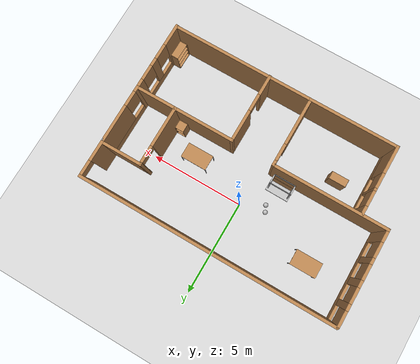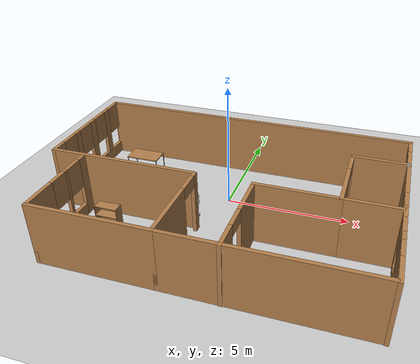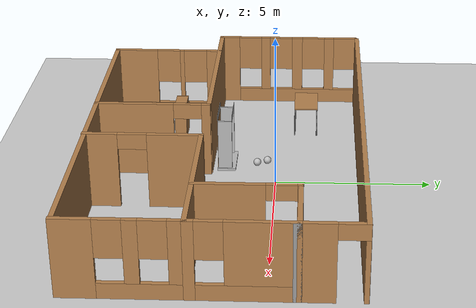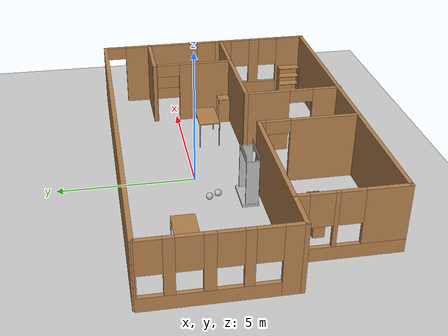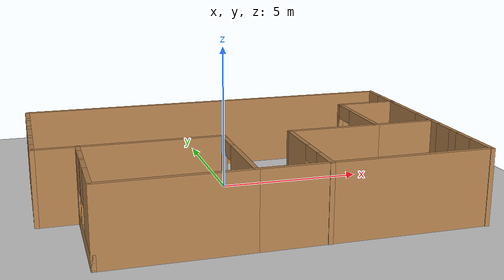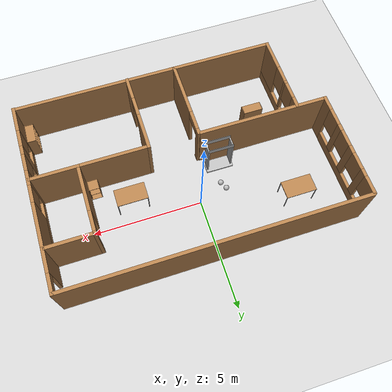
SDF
<sdf version="1.6">
 <world name="default">
  <light name="sun" type="directional">
   <pose>0 0 10 0 -0 0</pose>
   <diffuse>0.8 0.8 0.8 1</diffuse>
   <specular>0.1 0.1 0.1 1</specular>
   <attenuation>
    <range>1000</range>
    <constant>0.9</constant>
    <linear>0.01</linear>
    <quadratic>0.001</quadratic>
   </attenuation>
   <direction>-0.5 0.5 -1</direction>
  </light>
  <model name="ground_plane">
   <static>1</static>
   <link name="link">
    <collision name="collision">
     <geometry><plane><normal>0 0 1</normal><size>100 100</size></plane></geometry>
     <surface><friction><ode><mu>100</mu><mu2>50</mu2></ode></friction></surface>
    </collision>
    <visual name="visual">
     <cast_shadows>0</cast_shadows>
     <geometry><plane><normal>0 0 1</normal><size>100 100</size></plane></geometry>
     <material>
      <script><uri>file://media/materials/scripts/gazebo.material</uri><name>Gazebo/Grey</name></script>
     </material>
    </visual>
   </link>
  </model>
  <gravity>0 0 -9.8</gravity>
  <magnetic_field>6e-06 2.3e-05 -4.2e-05</magnetic_field>
  <atmosphere type="adiabatic"/>
  <physics name="default_physics" default="0" type="ode">
   <max_step_size>0.001</max_step_size>
   <real_time_factor>1</real_time_factor>
   <real_time_update_rate>1000</real_time_update_rate>
  </physics>
  <scene><ambient>0.4 0.4 0.4 1</ambient><background>0.7 0.7 0.7 1</background><shadows>1</shadows></scene>
  <spherical_coordinates>
   <surface_model>EARTH_WGS84</surface_model>
   <latitude_deg>0</latitude_deg>
   <longitude_deg>0</longitude_deg>
   <elevation>0</elevation>
   <heading_deg>0</heading_deg>
  </spherical_coordinates>
  <model name="home">
   <pose>0.169071 -1.53733 0 0 -0 0</pose>
   <link name="Wall_11">
    <collision name="Wall_11_Collision">
     <geometry><box><size>2.25 0.15 2.5</size></box></geometry>
     <pose>0 0 1.25 0 -0 0</pose>
    </collision>
    <visual name="Wall_11_Visual">
     <pose>0 0 1.25 0 -0 0</pose>
     <geometry><box><size>2.25 0.15 2.5</size></box></geometry>
     <material>
      <script><uri>file://media/materials/scripts/gazebo.material</uri><name>Gazebo/Wood</name></script>
      <ambient>1 1 1 1</ambient>
     </material>
    </visual>
    <pose>5.65066 2.425 0 0 -0 3.14159</pose>
   </link>
   <link name="Wall_12">
    <pose>4.60066 0.875 0 0 0 -1.5708</pose>
    <visual name="Wall_12_Visual_0">
     <pose>-1.53737 0 1.25 0 -0 0</pose>
     <geometry><box><size>0.175268 0.15 2.5</size></box></geometry>
     <material>
      <script><uri>file://media/materials/scripts/gazebo.material</uri><name>Gazebo/Wood</name></script>
      <ambient>1 1 1 1</ambient>
     </material>
    </visual>
    <collision name="Wall_12_Collision_0">
     <geometry><box><size>0.175268 0.15 2.5</size></box></geometry>
     <pose>-1.53737 0 1.25 0 -0 0</pose>
    </collision>
    <visual name="Wall_12_Visual_1">
     <pose>0.537634 0 1.25 0 -0 0</pose>
     <geometry><box><size>2.17473 0.15 2.5</size></box></geometry>
     <material>
      <script><uri>file://media/materials/scripts/gazebo.material</uri><name>Gazebo/Wood</name></script>
      <ambient>1 1 1 1</ambient>
     </material>
    </visual>
    <collision name="Wall_12_Collision_1">
     <geometry><box><size>2.17473 0.15 2.5</size></box></geometry>
     <pose>0.537634 0 1.25 0 -0 0</pose>
    </collision>
    <visual name="Wall_12_Visual_2">
     <pose>-0.999732 0 2.25 0 -0 0</pose>
     <geometry><box><size>0.9 0.15 0.5</size></box></geometry>
     <material>
      <script><uri>file://media/materials/scripts/gazebo.material</uri><name>Gazebo/Wood</name></script>
      <ambient>1 1 1 1</ambient>
     </material>
    </visual>
    <collision name="Wall_12_Collision_2">
     <geometry><box><size>0.9 0.15 0.5</size></box></geometry>
     <pose>-0.999732 0 2.25 0 -0 0</pose>
    </collision>
   </link>
   <link name="Wall_13">
    <collision name="Wall_13_Collision">
     <geometry><box><size>2.25 0.15 2.5</size></box></geometry>
     <pose>0 0 1.25 0 -0 0</pose>
    </collision>
    <visual name="Wall_13_Visual">
     <pose>0 0 1.25 0 -0 0</pose>
     <geometry><box><size>2.25 0.15 2.5</size></box></geometry>
     <material>
      <script><uri>file://media/materials/scripts/gazebo.material</uri><name>Gazebo/Wood</name></script>
      <ambient>1 1 1 1</ambient>
     </material>
    </visual>
    <pose>5.65066 -0.675 0 0 -0 0</pose>
   </link>
   <link name="Wall_14">
    <pose>6.70066 0.875 0 0 -0 1.5708</pose>
    <visual name="Wall_14_Visual_0">
     <pose>-1.46129 0 1.25 0 -0 0</pose>
     <geometry><box><size>0.327416 0.15 2.5</size></box></geometry>
     <material>
      <script><uri>file://media/materials/scripts/gazebo.material</uri><name>Gazebo/Wood</name></script>
      <ambient>1 1 1 1</ambient>
     </material>
    </visual>
    <collision name="Wall_14_Collision_0">
     <geometry><box><size>0.327416 0.15 2.5</size></box></geometry>
     <pose>-1.46129 0 1.25 0 -0 0</pose>
    </collision>
    <visual name="Wall_14_Visual_1">
     <pose>0.163708 0 0.25 0 -0 0</pose>
     <geometry><box><size>2.92258 0.15 0.5</size></box></geometry>
     <material>
      <script><uri>file://media/materials/scripts/gazebo.material</uri><name>Gazebo/Wood</name></script>
      <ambient>1 1 1 1</ambient>
     </material>
    </visual>
    <collision name="Wall_14_Collision_1">
     <geometry><box><size>2.92258 0.15 0.5</size></box></geometry>
     <pose>0.163708 0 0.25 0 -0 0</pose>
    </collision>
    <visual name="Wall_14_Visual_2">
     <pose>0.563708 0 1.5 0 -0 0</pose>
     <geometry><box><size>2.12258 0.15 2</size></box></geometry>
     <material>
      <script><uri>file://media/materials/scripts/gazebo.material</uri><name>Gazebo/Wood</name></script>
      <ambient>1 1 1 1</ambient>
     </material>
    </visual>
    <collision name="Wall_14_Collision_2">
     <geometry><box><size>2.12258 0.15 2</size></box></geometry>
     <pose>0.563708 0 1.5 0 -0 0</pose>
    </collision>
    <visual name="Wall_14_Visual_3">
     <pose>-0.897584 0 1.9 0 -0 0</pose>
     <geometry><box><size>0.8 0.15 1.2</size></box></geometry>
     <material>
      <script><uri>file://media/materials/scripts/gazebo.material</uri><name>Gazebo/Wood</name></script>
      <ambient>1 1 1 1</ambient>
     </material>
    </visual>
    <collision name="Wall_14_Collision_3">
     <geometry><box><size>0.8 0.15 1.2</size></box></geometry>
     <pose>-0.897584 0 1.9 0 -0 0</pose>
    </collision>
   </link>
   <link name="Wall_16">
    <collision name="Wall_16_Collision">
     <geometry><box><size>3.25 0.15 2.5</size></box></geometry>
     <pose>0 0 1.25 0 -0 0</pose>
    </collision>
    <visual name="Wall_16_Visual">
     <pose>0 0 1.25 0 -0 0</pose>
     <geometry><box><size>3.25 0.15 2.5</size></box></geometry>
     <material>
      <script><uri>file://media/materials/scripts/gazebo.material</uri><name>Gazebo/Wood</name></script>
      <ambient>1 1 1 1</ambient>
     </material>
    </visual>
    <pose>3.05066 -0.675 0 0 -0 3.14159</pose>
   </link>
   <link name="Wall_17">
    <pose>1.50066 -2.475 0 0 0 -1.5708</pose>
    <visual name="Wall_17_Visual_0">
     <pose>-1.00164 0 1.25 0 -0 0</pose>
     <geometry><box><size>1.74673 0.15 2.5</size></box></geometry>
     <material>
      <script><uri>file://media/materials/scripts/gazebo.material</uri><name>Gazebo/Wood</name></script>
      <ambient>1 1 1 1</ambient>
     </material>
    </visual>
    <collision name="Wall_17_Collision_0">
     <geometry><box><size>1.74673 0.15 2.5</size></box></geometry>
     <pose>-1.00164 0 1.25 0 -0 0</pose>
    </collision>
    <visual name="Wall_17_Visual_1">
     <pose>1.32336 0 1.25 0 -0 0</pose>
     <geometry><box><size>1.10327 0.15 2.5</size></box></geometry>
     <material>
      <script><uri>file://media/materials/scripts/gazebo.material</uri><name>Gazebo/Wood</name></script>
      <ambient>1 1 1 1</ambient>
     </material>
    </visual>
    <collision name="Wall_17_Collision_1">
     <geometry><box><size>1.10327 0.15 2.5</size></box></geometry>
     <pose>1.32336 0 1.25 0 -0 0</pose>
    </collision>
    <visual name="Wall_17_Visual_2">
     <pose>0.321727 0 2.25 0 -0 0</pose>
     <geometry><box><size>0.9 0.15 0.5</size></box></geometry>
     <material>
      <script><uri>file://media/materials/scripts/gazebo.material</uri><name>Gazebo/Wood</name></script>
      <ambient>1 1 1 1</ambient>
     </material>
    </visual>
    <collision name="Wall_17_Collision_2">
     <geometry><box><size>0.9 0.15 0.5</size></box></geometry>
     <pose>0.321727 0 2.25 0 -0 0</pose>
    </collision>
   </link>
   <link name="Wall_20">
    <collision name="Wall_20_Collision">
     <geometry><box><size>6 0.15 2.5</size></box></geometry>
     <pose>0 0 1.25 0 -0 0</pose>
    </collision>
    <visual name="Wall_20_Visual">
     <pose>0 0 1.25 0 -0 0</pose>
     <geometry><box><size>6 0.15 2.5</size></box></geometry>
     <material>
      <script><uri>file://media/materials/scripts/gazebo.material</uri><name>Gazebo/Wood</name></script>
      <ambient>1 1 1 1</ambient>
     </material>
    </visual>
    <pose>-3.77566 -0.625687 0 0 -0 3.14159</pose>
   </link>
   <link name="Wall_21">
    <pose>-6.70066 1.79931 0 0 -0 1.5708</pose>
    <visual name="Wall_21_Visual_0">
     <pose>-2.1438 0 1.25 0 -0 0</pose>
     <geometry><box><size>0.712408 0.15 2.5</size></box></geometry>
     <material>
      <script><uri>file://media/materials/scripts/gazebo.material</uri><name>Gazebo/Wood</name></script>
      <ambient>1 1 1 1</ambient>
     </material>
    </visual>
    <collision name="Wall_21_Collision_0">
     <geometry><box><size>0.712408 0.15 2.5</size></box></geometry>
     <pose>-2.1438 0 1.25 0 -0 0</pose>
    </collision>
    <visual name="Wall_21_Visual_1">
     <pose>0.356204 0 0.25 0 -0 0</pose>
     <geometry><box><size>4.28759 0.15 0.5</size></box></geometry>
     <material>
      <script><uri>file://media/materials/scripts/gazebo.material</uri><name>Gazebo/Wood</name></script>
      <ambient>1 1 1 1</ambient>
     </material>
    </visual>
    <collision name="Wall_21_Collision_1">
     <geometry><box><size>4.28759 0.15 0.5</size></box></geometry>
     <pose>0.356204 0 0.25 0 -0 0</pose>
    </collision>
    <visual name="Wall_21_Visual_2">
     <pose>-0.828988 0 1.5 0 -0 0</pose>
     <geometry><box><size>0.317208 0.15 2</size></box></geometry>
     <material>
      <script><uri>file://media/materials/scripts/gazebo.material</uri><name>Gazebo/Wood</name></script>
      <ambient>1 1 1 1</ambient>
     </material>
    </visual>
    <collision name="Wall_21_Collision_2">
     <geometry><box><size>0.317208 0.15 2</size></box></geometry>
     <pose>-0.828988 0 1.5 0 -0 0</pose>
    </collision>
    <visual name="Wall_21_Visual_3">
     <pose>0.314821 0 1.5 0 -0 0</pose>
     <geometry><box><size>0.370409 0.15 2</size></box></geometry>
     <material>
      <script><uri>file://media/materials/scripts/gazebo.material</uri><name>Gazebo/Wood</name></script>
      <ambient>1 1 1 1</ambient>
     </material>
    </visual>
    <collision name="Wall_21_Collision_3">
     <geometry><box><size>0.370409 0.15 2</size></box></geometry>
     <pose>0.314821 0 1.5 0 -0 0</pose>
    </collision>
    <visual name="Wall_21_Visual_4">
     <pose>1.47193 0 1.5 0 -0 0</pose>
     <geometry><box><size>0.343809 0.15 2</size></box></geometry>
     <material>
      <script><uri>file://media/materials/scripts/gazebo.material</uri><name>Gazebo/Wood</name></script>
      <ambient>1 1 1 1</ambient>
     </material>
    </visual>
    <collision name="Wall_21_Collision_4">
     <geometry><box><size>0.343809 0.15 2</size></box></geometry>
     <pose>1.47193 0 1.5 0 -0 0</pose>
    </collision>
    <visual name="Wall_21_Visual_5">
     <pose>2.47192 0 1.5 0 -0 0</pose>
     <geometry><box><size>0.056167 0.15 2</size></box></geometry>
     <material>
      <script><uri>file://media/materials/scripts/gazebo.material</uri><name>Gazebo/Wood</name></script>
      <ambient>1 1 1 1</ambient>
     </material>
    </visual>
    <collision name="Wall_21_Collision_5">
     <geometry><box><size>0.056167 0.15 2</size></box></geometry>
     <pose>2.47192 0 1.5 0 -0 0</pose>
    </collision>
    <visual name="Wall_21_Visual_6">
     <pose>-1.38759 0 1.9 0 -0 0</pose>
     <geometry><box><size>0.8 0.15 1.2</size></box></geometry>
     <material>
      <script><uri>file://media/materials/scripts/gazebo.material</uri><name>Gazebo/Wood</name></script>
      <ambient>1 1 1 1</ambient>
     </material>
    </visual>
    <collision name="Wall_21_Collision_6">
     <geometry><box><size>0.8 0.15 1.2</size></box></geometry>
     <pose>-1.38759 0 1.9 0 -0 0</pose>
    </collision>
    <visual name="Wall_21_Visual_7">
     <pose>-0.270384 0 1.9 0 -0 0</pose>
     <geometry><box><size>0.8 0.15 1.2</size></box></geometry>
     <material>
      <script><uri>file://media/materials/scripts/gazebo.material</uri><name>Gazebo/Wood</name></script>
      <ambient>1 1 1 1</ambient>
     </material>
    </visual>
    <collision name="Wall_21_Collision_7">
     <geometry><box><size>0.8 0.15 1.2</size></box></geometry>
     <pose>-0.270384 0 1.9 0 -0 0</pose>
    </collision>
    <visual name="Wall_21_Visual_8">
     <pose>0.900025 0 1.9 0 -0 0</pose>
     <geometry><box><size>0.8 0.15 1.2</size></box></geometry>
     <material>
      <script><uri>file://media/materials/scripts/gazebo.material</uri><name>Gazebo/Wood</name></script>
      <ambient>1 1 1 1</ambient>
     </material>
    </visual>
    <collision name="Wall_21_Collision_8">
     <geometry><box><size>0.8 0.15 1.2</size></box></geometry>
     <pose>0.900025 0 1.9 0 -0 0</pose>
    </collision>
    <visual name="Wall_21_Visual_9">
     <pose>2.04383 0 1.9 0 -0 0</pose>
     <geometry><box><size>0.8 0.15 1.2</size></box></geometry>
     <material>
      <script><uri>file://media/materials/scripts/gazebo.material</uri><name>Gazebo/Wood</name></script>
      <ambient>1 1 1 1</ambient>
     </material>
    </visual>
    <collision name="Wall_21_Collision_9">
     <geometry><box><size>0.8 0.15 1.2</size></box></geometry>
     <pose>2.04383 0 1.9 0 -0 0</pose>
    </collision>
   </link>
   <link name="Wall_23">
    <pose>-5.34609 -2.45229 0 0 0 -1.5708</pose>
    <visual name="Wall_23_Visual_0">
     <pose>-1.61777 0 1.25 0 -0 0</pose>
     <geometry><box><size>0.514462 0.15 2.5</size></box></geometry>
     <material>
      <script><uri>file://media/materials/scripts/gazebo.material</uri><name>Gazebo/Wood</name></script>
      <ambient>1 1 1 1</ambient>
     </material>
    </visual>
    <collision name="Wall_23_Collision_0">
     <geometry><box><size>0.514462 0.15 2.5</size></box></geometry>
     <pose>-1.61777 0 1.25 0 -0 0</pose>
    </collision>
    <visual name="Wall_23_Visual_1">
     <pose>0.257231 0 0.25 0 -0 0</pose>
     <geometry><box><size>3.23554 0.15 0.5</size></box></geometry>
     <material>
      <script><uri>file://media/materials/scripts/gazebo.material</uri><name>Gazebo/Wood</name></script>
      <ambient>1 1 1 1</ambient>
     </material>
    </visual>
    <collision name="Wall_23_Collision_1">
     <geometry><box><size>3.23554 0.15 0.5</size></box></geometry>
     <pose>0.257231 0 0.25 0 -0 0</pose>
    </collision>
    <visual name="Wall_23_Visual_2">
     <pose>-0.488306 0 1.5 0 -0 0</pose>
     <geometry><box><size>0.144463 0.15 2</size></box></geometry>
     <material>
      <script><uri>file://media/materials/scripts/gazebo.material</uri><name>Gazebo/Wood</name></script>
      <ambient>1 1 1 1</ambient>
     </material>
    </visual>
    <collision name="Wall_23_Collision_2">
     <geometry><box><size>0.144463 0.15 2</size></box></geometry>
     <pose>-0.488306 0 1.5 0 -0 0</pose>
    </collision>
    <visual name="Wall_23_Visual_3">
     <pose>1.12946 0 1.5 0 -0 0</pose>
     <geometry><box><size>1.49107 0.15 2</size></box></geometry>
     <material>
      <script><uri>file://media/materials/scripts/gazebo.material</uri><name>Gazebo/Wood</name></script>
      <ambient>1 1 1 1</ambient>
     </material>
    </visual>
    <collision name="Wall_23_Collision_3">
     <geometry><box><size>1.49107 0.15 2</size></box></geometry>
     <pose>1.12946 0 1.5 0 -0 0</pose>
    </collision>
    <visual name="Wall_23_Visual_4">
     <pose>-0.960538 0 1.9 0 -0 0</pose>
     <geometry><box><size>0.8 0.15 1.2</size></box></geometry>
     <material>
      <script><uri>file://media/materials/scripts/gazebo.material</uri><name>Gazebo/Wood</name></script>
      <ambient>1 1 1 1</ambient>
     </material>
    </visual>
    <collision name="Wall_23_Collision_4">
     <geometry><box><size>0.8 0.15 1.2</size></box></geometry>
     <pose>-0.960538 0 1.9 0 -0 0</pose>
    </collision>
    <visual name="Wall_23_Visual_5">
     <pose>-0.016075 0 1.9 0 -0 0</pose>
     <geometry><box><size>0.8 0.15 1.2</size></box></geometry>
     <material>
      <script><uri>file://media/materials/scripts/gazebo.material</uri><name>Gazebo/Wood</name></script>
      <ambient>1 1 1 1</ambient>
     </material>
    </visual>
    <collision name="Wall_23_Collision_5">
     <geometry><box><size>0.8 0.15 1.2</size></box></geometry>
     <pose>-0.016075 0 1.9 0 -0 0</pose>
    </collision>
   </link>
   <link name="Wall_24">
    <collision name="Wall_24_Collision">
     <geometry><box><size>4.75 0.15 2.5</size></box></geometry>
     <pose>0 0 1.25 0 -0 0</pose>
    </collision>
    <visual name="Wall_24_Visual">
     <pose>0 0 1.25 0 -0 0</pose>
     <geometry><box><size>4.75 0.15 2.5</size></box></geometry>
     <material>
      <script><uri>file://media/materials/scripts/gazebo.material</uri><name>Gazebo/Wood</name></script>
      <ambient>1 1 1 1</ambient>
     </material>
    </visual>
    <pose>-3.04609 -4.25229 0 0 -0 0</pose>
   </link>
   <link name="Wall_25">
    <pose>-0.746094 -2.45229 0 0 -0 1.5708</pose>
    <visual name="Wall_25_Visual_0">
     <pose>-0.595003 0 1.25 0 -0 0</pose>
     <geometry><box><size>2.55999 0.15 2.5</size></box></geometry>
     <material>
      <script><uri>file://media/materials/scripts/gazebo.material</uri><name>Gazebo/Wood</name></script>
      <ambient>1 1 1 1</ambient>
     </material>
    </visual>
    <collision name="Wall_25_Collision_0">
     <geometry><box><size>2.55999 0.15 2.5</size></box></geometry>
     <pose>-0.595003 0 1.25 0 -0 0</pose>
    </collision>
    <visual name="Wall_25_Visual_1">
     <pose>1.73 0 1.25 0 -0 0</pose>
     <geometry><box><size>0.290005 0.15 2.5</size></box></geometry>
     <material>
      <script><uri>file://media/materials/scripts/gazebo.material</uri><name>Gazebo/Wood</name></script>
      <ambient>1 1 1 1</ambient>
     </material>
    </visual>
    <collision name="Wall_25_Collision_1">
     <geometry><box><size>0.290005 0.15 2.5</size></box></geometry>
     <pose>1.73 0 1.25 0 -0 0</pose>
    </collision>
    <visual name="Wall_25_Visual_2">
     <pose>1.13499 0 2.25 0 -0 0</pose>
     <geometry><box><size>0.9 0.15 0.5</size></box></geometry>
     <material>
      <script><uri>file://media/materials/scripts/gazebo.material</uri><name>Gazebo/Wood</name></script>
      <ambient>1 1 1 1</ambient>
     </material>
    </visual>
    <collision name="Wall_25_Collision_2">
     <geometry><box><size>0.9 0.15 0.5</size></box></geometry>
     <pose>1.13499 0 2.25 0 -0 0</pose>
    </collision>
   </link>
   <link name="Wall_28">
    <pose>6.70066 -2.475 0 0 -0 1.5708</pose>
    <visual name="Wall_28_Visual_0">
     <pose>-1.27552 0 1.25 0 -0 0</pose>
     <geometry><box><size>1.19897 0.15 2.5</size></box></geometry>
     <material>
      <script><uri>file://media/materials/scripts/gazebo.material</uri><name>Gazebo/Wood</name></script>
      <ambient>1 1 1 1</ambient>
     </material>
    </visual>
    <collision name="Wall_28_Collision_0">
     <geometry><box><size>1.19897 0.15 2.5</size></box></geometry>
     <pose>-1.27552 0 1.25 0 -0 0</pose>
    </collision>
    <visual name="Wall_28_Visual_1">
     <pose>0.599483 0 0.25 0 -0 0</pose>
     <geometry><box><size>2.55103 0.15 0.5</size></box></geometry>
     <material>
      <script><uri>file://media/materials/scripts/gazebo.material</uri><name>Gazebo/Wood</name></script>
      <ambient>1 1 1 1</ambient>
     </material>
    </visual>
    <collision name="Wall_28_Collision_1">
     <geometry><box><size>2.55103 0.15 0.5</size></box></geometry>
     <pose>0.599483 0 0.25 0 -0 0</pose>
    </collision>
    <visual name="Wall_28_Visual_2">
     <pose>0.336118 0 1.5 0 -0 0</pose>
     <geometry><box><size>0.424305 0.15 2</size></box></geometry>
     <material>
      <script><uri>file://media/materials/scripts/gazebo.material</uri><name>Gazebo/Wood</name></script>
      <ambient>1 1 1 1</ambient>
     </material>
    </visual>
    <collision name="Wall_28_Collision_2">
     <geometry><box><size>0.424305 0.15 2</size></box></geometry>
     <pose>0.336118 0 1.5 0 -0 0</pose>
    </collision>
    <visual name="Wall_28_Visual_3">
     <pose>1.61163 0 1.5 0 -0 0</pose>
     <geometry><box><size>0.52673 0.15 2</size></box></geometry>
     <material>
      <script><uri>file://media/materials/scripts/gazebo.material</uri><name>Gazebo/Wood</name></script>
      <ambient>1 1 1 1</ambient>
     </material>
    </visual>
    <collision name="Wall_28_Collision_3">
     <geometry><box><size>0.52673 0.15 2</size></box></geometry>
     <pose>1.61163 0 1.5 0 -0 0</pose>
    </collision>
    <visual name="Wall_28_Visual_4">
     <pose>-0.276034 0 1.9 0 -0 0</pose>
     <geometry><box><size>0.8 0.15 1.2</size></box></geometry>
     <material>
      <script><uri>file://media/materials/scripts/gazebo.material</uri><name>Gazebo/Wood</name></script>
      <ambient>1 1 1 1</ambient>
     </material>
    </visual>
    <collision name="Wall_28_Collision_4">
     <geometry><box><size>0.8 0.15 1.2</size></box></geometry>
     <pose>-0.276034 0 1.9 0 -0 0</pose>
    </collision>
    <visual name="Wall_28_Visual_5">
     <pose>0.94827 0 1.9 0 -0 0</pose>
     <geometry><box><size>0.8 0.15 1.2</size></box></geometry>
     <material>
      <script><uri>file://media/materials/scripts/gazebo.material</uri><name>Gazebo/Wood</name></script>
      <ambient>1 1 1 1</ambient>
     </material>
    </visual>
    <collision name="Wall_28_Collision_5">
     <geometry><box><size>0.8 0.15 1.2</size></box></geometry>
     <pose>0.94827 0 1.9 0 -0 0</pose>
    </collision>
   </link>
   <link name="Wall_3">
    <collision name="Wall_3_Collision">
     <geometry><box><size>13.5 0.15 2.5</size></box></geometry>
     <pose>0 0 1.25 0 -0 0</pose>
    </collision>
    <visual name="Wall_3_Visual">
     <pose>0 0 1.25 0 -0 0</pose>
     <geometry><box><size>13.5 0.15 2.5</size></box></geometry>
     <material>
      <script><uri>file://media/materials/scripts/gazebo.material</uri><name>Gazebo/Wood</name></script>
      <ambient>1 1 1 1</ambient>
     </material>
    </visual>
    <pose>0.02566 4.275 0 0 -0 0</pose>
   </link>
   <link name="Wall_34">
    <collision name="Wall_34_Collision">
     <geometry><box><size>7.5 0.15 2.5</size></box></geometry>
     <pose>0 0 1.25 0 -0 0</pose>
    </collision>
    <visual name="Wall_34_Visual">
     <pose>0 0 1.25 0 -0 0</pose>
     <geometry><box><size>7.5 0.15 2.5</size></box></geometry>
     <material>
      <script><uri>file://media/materials/scripts/gazebo.material</uri><name>Gazebo/Wood</name></script>
      <ambient>1 1 1 1</ambient>
     </material>
    </visual>
    <pose>2.92891 -4.25229 0 0 -0 0</pose>
   </link>
   <link name="Wall_4">
    <pose>6.70066 3.35 0 0 0 -1.5708</pose>
    <visual name="Wall_4_Visual_0">
     <pose>-0.995466 0 1.25 0 -0 0</pose>
     <geometry><box><size>0.009067 0.15 2.5</size></box></geometry>
     <material>
      <script><uri>file://media/materials/scripts/gazebo.material</uri><name>Gazebo/Wood</name></script>
      <ambient>1 1 1 1</ambient>
     </material>
    </visual>
    <collision name="Wall_4_Collision_0">
     <geometry><box><size>0.009067 0.15 2.5</size></box></geometry>
     <pose>-0.995466 0 1.25 0 -0 0</pose>
    </collision>
    <visual name="Wall_4_Visual_1">
     <pose>0.454534 0 1.25 0 -0 0</pose>
     <geometry><box><size>1.09093 0.15 2.5</size></box></geometry>
     <material>
      <script><uri>file://media/materials/scripts/gazebo.material</uri><name>Gazebo/Wood</name></script>
      <ambient>1 1 1 1</ambient>
     </material>
    </visual>
    <collision name="Wall_4_Collision_1">
     <geometry><box><size>1.09093 0.15 2.5</size></box></geometry>
     <pose>0.454534 0 1.25 0 -0 0</pose>
    </collision>
    <visual name="Wall_4_Visual_2">
     <pose>-0.540933 0 2.25 0 -0 0</pose>
     <geometry><box><size>0.9 0.15 0.5</size></box></geometry>
     <material>
      <script><uri>file://media/materials/scripts/gazebo.material</uri><name>Gazebo/Wood</name></script>
      <ambient>1 1 1 1</ambient>
     </material>
    </visual>
    <collision name="Wall_4_Collision_2">
     <geometry><box><size>0.9 0.15 0.5</size></box></geometry>
     <pose>-0.540933 0 2.25 0 -0 0</pose>
    </collision>
   </link>
   <link name="Wall_5">
    <collision name="Wall_5_Collision">
     <geometry><box><size>0.25 0.15 2.5</size></box></geometry>
     <pose>0 0 1.25 0 -0 0</pose>
    </collision>
    <visual name="Wall_5_Visual">
     <pose>0 0 1.25 0 -0 0</pose>
     <geometry><box><size>0.25 0.15 2.5</size></box></geometry>
     <material>
      <script><uri>file://media/materials/scripts/gazebo.material</uri><name>Gazebo/Grey</name></script>
      <ambient>1 1 1 1</ambient>
     </material>
    </visual>
    <pose>6.70066 2.375 0 0 0 -1.5708</pose>
   </link>
   <static>1</static>
  </model>
  <model name="bookshelf">
   <static>1</static>
   <link name="link">
    <inertial><mass>1</mass></inertial>
    <collision name="back">
     <pose>0 0.005 0.6 0 -0 0</pose>
     <geometry><box><size>0.9 0.01 1.2</size></box></geometry>
    </collision>
    <visual name="visual1">
     <pose>0 0.005 0.6 0 -0 0</pose>
     <geometry><box><size>0.9 0.01 1.2</size></box></geometry>
     <material>
      <script><uri>file://media/materials/scripts/gazebo.material</uri><name>Gazebo/Wood</name></script>
     </material>
    </visual>
    <collision name="left_side">
     <pose>0.45 -0.195 0.6 0 -0 0</pose>
     <geometry><box><size>0.02 0.4 1.2</size></box></geometry>
    </collision>
    <visual name="visual2">
     <pose>0.45 -0.195 0.6 0 -0 0</pose>
     <geometry><box><size>0.02 0.4 1.2</size></box></geometry>
     <material>
      <script><uri>file://media/materials/scripts/gazebo.material</uri><name>Gazebo/Wood</name></script>
     </material>
    </visual>
    <collision name="right_side">
     <pose>-0.45 -0.195 0.6 0 -0 0</pose>
     <geometry><box><size>0.02 0.4 1.2</size></box></geometry>
    </collision>
    <visual name="visual3">
     <pose>-0.45 -0.195 0.6 0 -0 0</pose>
     <geometry><box><size>0.02 0.4 1.2</size></box></geometry>
     <material>
      <script><uri>file://media/materials/scripts/gazebo.material</uri><name>Gazebo/Wood</name></script>
     </material>
    </visual>
    <collision name="bottom">
     <pose>0 -0.195 0.03 0 -0 0</pose>
     <geometry><box><size>0.88 0.4 0.06</size></box></geometry>
    </collision>
    <visual name="visual4">
     <pose>0 -0.195 0.03 0 -0 0</pose>
     <geometry><box><size>0.88 0.4 0.06</size></box></geometry>
     <material>
      <script><uri>file://media/materials/scripts/gazebo.material</uri><name>Gazebo/Wood</name></script>
     </material>
    </visual>
    <collision name="top">
     <pose>0 -0.195 1.19 0 -0 0</pose>
     <geometry><box><size>0.88 0.4 0.02</size></box></geometry>
    </collision>
    <visual name="visual5">
     <pose>0 -0.195 1.19 0 -0 0</pose>
     <geometry><box><size>0.88 0.4 0.02</size></box></geometry>
     <material>
      <script><uri>file://media/materials/scripts/gazebo.material</uri><name>Gazebo/Wood</name></script>
     </material>
    </visual>
    <collision name="low_shelf">
     <pose>0 -0.195 0.43 0 -0 0</pose>
     <geometry><box><size>0.88 0.4 0.02</size></box></geometry>
    </collision>
    <visual name="visual6">
     <pose>0 -0.195 0.43 0 -0 0</pose>
     <geometry><box><size>0.88 0.4 0.02</size></box></geometry>
     <material>
      <script><uri>file://media/materials/scripts/gazebo.material</uri><name>Gazebo/Wood</name></script>
     </material>
    </visual>
    <collision name="high_shelf">
     <pose>0 -0.195 0.8 0 -0 0</pose>
     <geometry><box><size>0.88 0.4 0.02</size></box></geometry>
    </collision>
    <visual name="visual7">
     <pose>0 -0.195 0.8 0 -0 0</pose>
     <geometry><box><size>0.88 0.4 0.02</size></box></geometry>
     <material>
      <script><uri>file://media/materials/scripts/gazebo.material</uri><name>Gazebo/Wood</name></script>
     </material>
    </visual>
   </link>
   <pose>6.77671 -5.23848 0 0 0 -1.5829</pose>
  </model>
  <model name="bookshelf_0">
   <static>1</static>
   <link name="link">
    <inertial><mass>1</mass></inertial>
    <collision name="back">
     <pose>0 0.005 0.6 0 -0 0</pose>
     <geometry><box><size>0.9 0.01 1.2</size></box></geometry>
    </collision>
    <visual name="visual1">
     <pose>0 0.005 0.6 0 -0 0</pose>
     <geometry><box><size>0.9 0.01 1.2</size></box></geometry>
     <material>
      <script><uri>file://media/materials/scripts/gazebo.material</uri><name>Gazebo/Wood</name></script>
     </material>
    </visual>
    <collision name="left_side">
     <pose>0.45 -0.195 0.6 0 -0 0</pose>
     <geometry><box><size>0.02 0.4 1.2</size></box></geometry>
    </collision>
    <visual name="visual2">
     <pose>0.45 -0.195 0.6 0 -0 0</pose>
     <geometry><box><size>0.02 0.4 1.2</size></box></geometry>
     <material>
      <script><uri>file://media/materials/scripts/gazebo.material</uri><name>Gazebo/Wood</name></script>
     </material>
    </visual>
    <collision name="right_side">
     <pose>-0.45 -0.195 0.6 0 -0 0</pose>
     <geometry><box><size>0.02 0.4 1.2</size></box></geometry>
    </collision>
    <visual name="visual3">
     <pose>-0.45 -0.195 0.6 0 -0 0</pose>
     <geometry><box><size>0.02 0.4 1.2</size></box></geometry>
     <material>
      <script><uri>file://media/materials/scripts/gazebo.material</uri><name>Gazebo/Wood</name></script>
     </material>
    </visual>
    <collision name="bottom">
     <pose>0 -0.195 0.03 0 -0 0</pose>
     <geometry><box><size>0.88 0.4 0.06</size></box></geometry>
    </collision>
    <visual name="visual4">
     <pose>0 -0.195 0.03 0 -0 0</pose>
     <geometry><box><size>0.88 0.4 0.06</size></box></geometry>
     <material>
      <script><uri>file://media/materials/scripts/gazebo.material</uri><name>Gazebo/Wood</name></script>
     </material>
    </visual>
    <collision name="top">
     <pose>0 -0.195 1.19 0 -0 0</pose>
     <geometry><box><size>0.88 0.4 0.02</size></box></geometry>
    </collision>
    <visual name="visual5">
     <pose>0 -0.195 1.19 0 -0 0</pose>
     <geometry><box><size>0.88 0.4 0.02</size></box></geometry>
     <material>
      <script><uri>file://media/materials/scripts/gazebo.material</uri><name>Gazebo/Wood</name></script>
     </material>
    </visual>
    <collision name="low_shelf">
     <pose>0 -0.195 0.43 0 -0 0</pose>
     <geometry><box><size>0.88 0.4 0.02</size></box></geometry>
    </collision>
    <visual name="visual6">
     <pose>0 -0.195 0.43 0 -0 0</pose>
     <geometry><box><size>0.88 0.4 0.02</size></box></geometry>
     <material>
      <script><uri>file://media/materials/scripts/gazebo.material</uri><name>Gazebo/Wood</name></script>
     </material>
    </visual>
    <collision name="high_shelf">
     <pose>0 -0.195 0.8 0 -0 0</pose>
     <geometry><box><size>0.88 0.4 0.02</size></box></geometry>
    </collision>
    <visual name="visual7">
     <pose>0 -0.195 0.8 0 -0 0</pose>
     <geometry><box><size>0.88 0.4 0.02</size></box></geometry>
     <material>
      <script><uri>file://media/materials/scripts/gazebo.material</uri><name>Gazebo/Wood</name></script>
     </material>
    </visual>
   </link>
   <pose>-3.65504 -3.21246 0 0 -0 0</pose>
  </model>
  <model name="table">
   <static>0</static>
   <link name="link">
    <collision name="surface">
     <pose>0 0 1 0 -0 0</pose>
     <geometry><box><size>1.5 0.8 0.03</size></box></geometry>
     <surface><friction><ode><mu>0.6</mu><mu2>0.6</mu2></ode></friction></surface>
    </collision>
    <visual name="visual1">
     <pose>0 0 1 0 -0 0</pose>
     <geometry><box><size>1.4 0.8 0.04</size></box></geometry>
     <material>
      <script><uri>file://media/materials/scripts/gazebo.material</uri><name>Gazebo/Wood</name></script>
     </material>
    </visual>
    <collision name="front_left_leg">
     <pose>0.68 0.38 0.5 0 -0 0</pose>
     <geometry><cylinder><radius>0.02</radius><length>1</length></cylinder></geometry>
    </collision>
    <visual name="front_left_leg">
     <pose>0.68 0.38 0.5 0 -0 0</pose>
     <geometry><cylinder><radius>0.02</radius><length>1</length></cylinder></geometry>
     <material>
      <script><uri>file://media/materials/scripts/gazebo.material</uri><name>Gazebo/Grey</name></script>
     </material>
    </visual>
    <collision name="front_right_leg">
     <pose>0.68 -0.38 0.5 0 -0 0</pose>
     <geometry><cylinder><radius>0.02</radius><length>1</length></cylinder></geometry>
    </collision>
    <visual name="front_right_leg">
     <pose>0.68 -0.38 0.5 0 -0 0</pose>
     <geometry><cylinder><radius>0.02</radius><length>1</length></cylinder></geometry>
     <material>
      <script><uri>file://media/materials/scripts/gazebo.material</uri><name>Gazebo/Grey</name></script>
     </material>
    </visual>
    <collision name="back_right_leg">
     <pose>-0.68 -0.38 0.5 0 -0 0</pose>
     <geometry><cylinder><radius>0.02</radius><length>1</length></cylinder></geometry>
    </collision>
    <visual name="back_right_leg">
     <pose>-0.68 -0.38 0.5 0 -0 0</pose>
     <geometry><cylinder><radius>0.02</radius><length>1</length></cylinder></geometry>
     <material>
      <script><uri>file://media/materials/scripts/gazebo.material</uri><name>Gazebo/Grey</name></script>
     </material>
    </visual>
    <collision name="back_left_leg">
     <pose>-0.68 0.38 0.5 0 -0 0</pose>
     <geometry><cylinder><radius>0.02</radius><length>1</length></cylinder></geometry>
    </collision>
    <visual name="back_left_leg">
     <pose>-0.68 0.38 0.5 0 -0 0</pose>
     <geometry><cylinder><radius>0.02</radius><length>1</length></cylinder></geometry>
     <material>
      <script><uri>file://media/materials/scripts/gazebo.material</uri><name>Gazebo/Grey</name></script>
     </material>
    </visual>
    <inertial>
     <inertia><ixx>1</ixx><ixy>0</ixy><ixz>0</ixz><iyy>1</iyy><iyz>0</iyz><izz>1</izz></inertia>
     <mass>1</mass>
    </inertial>
   </link>
   <pose>-4.23096 0.941231 -9e-06 -1e-06 0 0</pose>
  </model>
  <model name="table_0">
   <static>0</static>
   <link name="link">
    <collision name="surface">
     <pose>0 0 1 0 -0 0</pose>
     <geometry><box><size>1.5 0.8 0.03</size></box></geometry>
     <surface><friction><ode><mu>0.6</mu><mu2>0.6</mu2></ode></friction></surface>
    </collision>
    <visual name="visual1">
     <pose>0 0 1 0 -0 0</pose>
     <geometry><box><size>1.4 0.8 0.04</size></box></geometry>
     <material>
      <script><uri>file://media/materials/scripts/gazebo.material</uri><name>Gazebo/Wood</name></script>
     </material>
    </visual>
    <collision name="front_left_leg">
     <pose>0.68 0.38 0.5 0 -0 0</pose>
     <geometry><cylinder><radius>0.02</radius><length>1</length></cylinder></geometry>
    </collision>
    <visual name="front_left_leg">
     <pose>0.68 0.38 0.5 0 -0 0</pose>
     <geometry><cylinder><radius>0.02</radius><length>1</length></cylinder></geometry>
     <material>
      <script><uri>file://media/materials/scripts/gazebo.material</uri><name>Gazebo/Grey</name></script>
     </material>
    </visual>
    <collision name="front_right_leg">
     <pose>0.68 -0.38 0.5 0 -0 0</pose>
     <geometry><cylinder><radius>0.02</radius><length>1</length></cylinder></geometry>
    </collision>
    <visual name="front_right_leg">
     <pose>0.68 -0.38 0.5 0 -0 0</pose>
     <geometry><cylinder><radius>0.02</radius><length>1</length></cylinder></geometry>
     <material>
      <script><uri>file://media/materials/scripts/gazebo.material</uri><name>Gazebo/Grey</name></script>
     </material>
    </visual>
    <collision name="back_right_leg">
     <pose>-0.68 -0.38 0.5 0 -0 0</pose>
     <geometry><cylinder><radius>0.02</radius><length>1</length></cylinder></geometry>
    </collision>
    <visual name="back_right_leg">
     <pose>-0.68 -0.38 0.5 0 -0 0</pose>
     <geometry><cylinder><radius>0.02</radius><length>1</length></cylinder></geometry>
     <material>
      <script><uri>file://media/materials/scripts/gazebo.material</uri><name>Gazebo/Grey</name></script>
     </material>
    </visual>
    <collision name="back_left_leg">
     <pose>-0.68 0.38 0.5 0 -0 0</pose>
     <geometry><cylinder><radius>0.02</radius><length>1</length></cylinder></geometry>
    </collision>
    <visual name="back_left_leg">
     <pose>-0.68 0.38 0.5 0 -0 0</pose>
     <geometry><cylinder><radius>0.02</radius><length>1</length></cylinder></geometry>
     <material>
      <script><uri>file://media/materials/scripts/gazebo.material</uri><name>Gazebo/Grey</name></script>
     </material>
    </visual>
    <inertial>
     <inertia><ixx>1</ixx><ixy>0</ixy><ixz>0</ixz><iyy>1</iyy><iyz>0</iyz><izz>1</izz></inertia>
     <mass>1</mass>
    </inertial>
   </link>
   <pose>2.95134 -0.943857 -9e-06 -1e-06 0 0</pose>
  </model>
  <model name="cabinet">
   <static>1</static>
   <link name="cabinet_bottom_plate">
    <inertial>
     <pose>0 0 -1 0 -0 0</pose>
     <inertia><ixx>2.05</ixx><ixy>0</ixy><ixz>0</ixz><iyy>2.05</iyy><iyz>0</iyz><izz>2.05</izz></inertia>
     <mass>25</mass>
    </inertial>
    <collision name="cabinet_bottom_plate_geom">
     <pose>0 0 0.01 0 -0 0</pose>
     <geometry><box><size>0.45 0.45 0.02</size></box></geometry>
    </collision>
    <visual name="cabinet_bottom_plate_geom_visual">
     <pose>0 0 0.01 0 -0 0</pose>
     <geometry><box><size>0.45 0.45 0.02</size></box></geometry>
     <material>
      <script><uri>file://media/materials/scripts/gazebo.material</uri><name>Gazebo/Wood</name></script>
     </material>
    </visual>
    <collision name="cabinet_bottom_plate_geom_cabinet_back_plate">
     <pose>0.235 0 0.51 0 -0 0</pose>
     <geometry><box><size>0.02 0.45 1.02</size></box></geometry>
    </collision>
    <visual name="cabinet_bottom_plate_geom_cabinet_back_plate_visual">
     <pose>0.235 0 0.51 0 -0 0</pose>
     <geometry><box><size>0.02 0.45 1.02</size></box></geometry>
     <material>
      <script><uri>file://media/materials/scripts/gazebo.material</uri><name>Gazebo/Wood</name></script>
     </material>
    </visual>
    <collision name="cabinet_bottom_plate_geom_cabinet_left_plate">
     <pose>0 0.235 0.51 0 -0 0</pose>
     <geometry><box><size>0.45 0.02 1.02</size></box></geometry>
    </collision>
    <visual name="cabinet_bottom_plate_geom_cabinet_left_plate_visual">
     <pose>0 0.235 0.51 0 -0 0</pose>
     <geometry><box><size>0.45 0.02 1.02</size></box></geometry>
     <material>
      <script><uri>file://media/materials/scripts/gazebo.material</uri><name>Gazebo/Wood</name></script>
     </material>
    </visual>
    <collision name="cabinet_bottom_plate_geom_cabinet_middle_plate">
     <pose>0 0 0.51 0 -0 0</pose>
     <geometry><box><size>0.45 0.45 0.02</size></box></geometry>
    </collision>
    <visual name="cabinet_bottom_plate_geom_cabinet_middle_plate_visual">
     <pose>0 0 0.51 0 -0 0</pose>
     <geometry><box><size>0.45 0.45 0.02</size></box></geometry>
     <material>
      <script><uri>file://media/materials/scripts/gazebo.material</uri><name>Gazebo/Wood</name></script>
     </material>
    </visual>
    <collision name="cabinet_bottom_plate_geom_cabinet_right_plate">
     <pose>0 -0.235 0.51 0 -0 0</pose>
     <geometry><box><size>0.45 0.02 1.02</size></box></geometry>
    </collision>
    <visual name="cabinet_bottom_plate_geom_cabinet_right_plate_visual">
     <pose>0 -0.235 0.51 0 -0 0</pose>
     <geometry><box><size>0.45 0.02 1.02</size></box></geometry>
     <material>
      <script><uri>file://media/materials/scripts/gazebo.material</uri><name>Gazebo/Wood</name></script>
     </material>
    </visual>
    <collision name="cabinet_bottom_plate_geom_cabinet_top_plate">
     <pose>0 0 1.01 0 -0 0</pose>
     <geometry><box><size>0.45 0.45 0.02</size></box></geometry>
    </collision>
    <visual name="cabinet_bottom_plate_geom_cabinet_top_plate_visual">
     <pose>0 0 1.01 0 -0 0</pose>
     <geometry><box><size>0.45 0.45 0.02</size></box></geometry>
     <material>
      <script><uri>file://media/materials/scripts/gazebo.material</uri><name>Gazebo/Wood</name></script>
     </material>
    </visual>
   </link>
   <pose>4.43384 -1.88094 0 0 0 -1.56487</pose>
  </model>
  <model name="frc2016_ball">
   <pose>-1.34471 -0.311112 0.127 0 -0 0</pose>
   <link name="link">
    <inertial>
     <mass>0.213</mass>
     <inertia>
      <ixx>0.00322667</ixx>
      <ixy>0</ixy>
      <ixz>0</ixz>
      <iyy>0.00322667</iyy>
      <iyz>0</iyz>
      <izz>0.00322667</izz>
     </inertia>
    </inertial>
    <visual name="visual"><geometry><sphere><radius>0.127</radius></sphere></geometry></visual>
    <collision name="collision">
     <geometry><sphere><radius>0.127</radius></sphere></geometry>
     <surface>
      <bounce><restitution_coefficient>0.15937</restitution_coefficient><threshold>0</threshold></bounce>
      <contact><ode><max_vel>100</max_vel><min_depth>0.001</min_depth></ode></contact>
     </surface>
    </collision>
   </link>
  </model>
  <model name="frc2016_drawbridge">
   <link name="base">
    <inertial>
     <mass>10</mass>
     <pose>0 0 1 0 -0 0</pose>
     <inertia><ixx>3.64907</ixx><ixy>0</ixy><ixz>0</ixz><iyy>4.67075</iyy><iyz>0</iyz><izz>1.66649</izz></inertia>
    </inertial>
    <visual name="platform">
     <pose>0 0 0.0425 0 -0 0</pose>
     <geometry><box><size>1.27 0.5969 0.085</size></box></geometry>
    </visual>
    <collision name="platform">
     <pose>0 0 0.0425 0 -0 0</pose>
     <geometry><box><size>1.27 0.5969 0.085</size></box></geometry>
    </collision>
    <visual name="right_wall">
     <pose>0.55879 0.04444 0.889 0 -0 0</pose>
     <geometry><box><size>0.05715 0.45698 1.77165</size></box></geometry>
    </visual>
    <collision name="right_wall">
     <pose>0.55879 0.04444 0.889 0 -0 0</pose>
     <geometry><box><size>0.05715 0.45698 1.77165</size></box></geometry>
    </collision>
    <visual name="left_wall">
     <pose>-0.55879 0.04444 0.889 0 -0 0</pose>
     <geometry><box><size>0.05715 0.45698 1.77165</size></box></geometry>
    </visual>
    <collision name="left_wall">
     <pose>-0.55879 0.04444 0.889 0 -0 0</pose>
     <geometry><box><size>0.05715 0.45698 1.77165</size></box></geometry>
    </collision>
    <visual name="front_upper_wall">
     <pose>0 0.27611 1.84286 0 -0 0</pose>
     <geometry><box><size>1.1557 0.006347 0.254</size></box></geometry>
    </visual>
    <collision name="front_upper_wall">
     <pose>0 0.27611 1.84286 0 -0 0</pose>
     <geometry><box><size>1.1557 0.006347 0.254</size></box></geometry>
    </collision>
    <visual name="back_upper_wall">
     <pose>0 -0.18722 1.84286 0 -0 0</pose>
     <geometry><box><size>1.1557 0.006347 0.254</size></box></geometry>
    </visual>
    <collision name="back_upper_wall">
     <pose>0 -0.18722 1.84286 0 -0 0</pose>
     <geometry><box><size>1.1557 0.006347 0.254</size></box></geometry>
    </collision>
   </link>
   <link name="bridge">
    <pose>0 0.28245 0.50577 0 -0 0</pose>
    <inertial>
     <mass>2</mass>
     <pose>0 -0.28245 -0.50577 0 -0 0</pose>
     <inertia>
      <ixx>0.139361</ixx>
      <ixy>0</ixy>
      <ixz>0</ixz>
      <iyy>0.357088</iyy>
      <iyz>0</iyz>
      <izz>0.217741</izz>
     </inertia>
    </inertial>
    <visual name="visual">
     <geometry><box><size>1.14298 0.006347 0.9144</size></box></geometry>
     <material><script><name>Gazebo/WoodFloor</name><uri>__default__</uri></script></material>
    </visual>
    <collision name="collision"><geometry><box><size>1.14298 0.006347 0.9144</size></box></geometry></collision>
   </link>
   <joint name="bridge_joint" type="revolute">
    <pose>0 0 -0.4172 0 -0 0</pose>
    <parent>base</parent>
    <child>bridge</child>
    <axis>
     <xyz>1 0 0</xyz>
     <limit><lower>-2</lower><upper>0</upper></limit>
     <use_parent_model_frame>0</use_parent_model_frame>
     <dynamics><spring_reference>0</spring_reference><spring_stiffness>0</spring_stiffness></dynamics>
    </axis>
   </joint>
   <pose>-1.40442 -1.63833 0 0 -0 3.13554</pose>
  </model>
  <model name="frc2016_ball_0">
   <pose>-1.18826 -0.643111 0.127 0 -0 0</pose>
   <link name="link">
    <inertial>
     <mass>0.213</mass>
     <inertia>
      <ixx>0.00322667</ixx>
      <ixy>0</ixy>
      <ixz>0</ixz>
      <iyy>0.00322667</iyy>
      <iyz>0</iyz>
      <izz>0.00322667</izz>
     </inertia>
    </inertial>
    <visual name="visual"><geometry><sphere><radius>0.127</radius></sphere></geometry></visual>
    <collision name="collision">
     <geometry><sphere><radius>0.127</radius></sphere></geometry>
     <surface>
      <bounce><restitution_coefficient>0.15937</restitution_coefficient><threshold>0</threshold></bounce>
      <contact><ode><max_vel>100</max_vel><min_depth>0.001</min_depth></ode></contact>
     </surface>
    </collision>
   </link>
  </model>
 </world>
</sdf>
